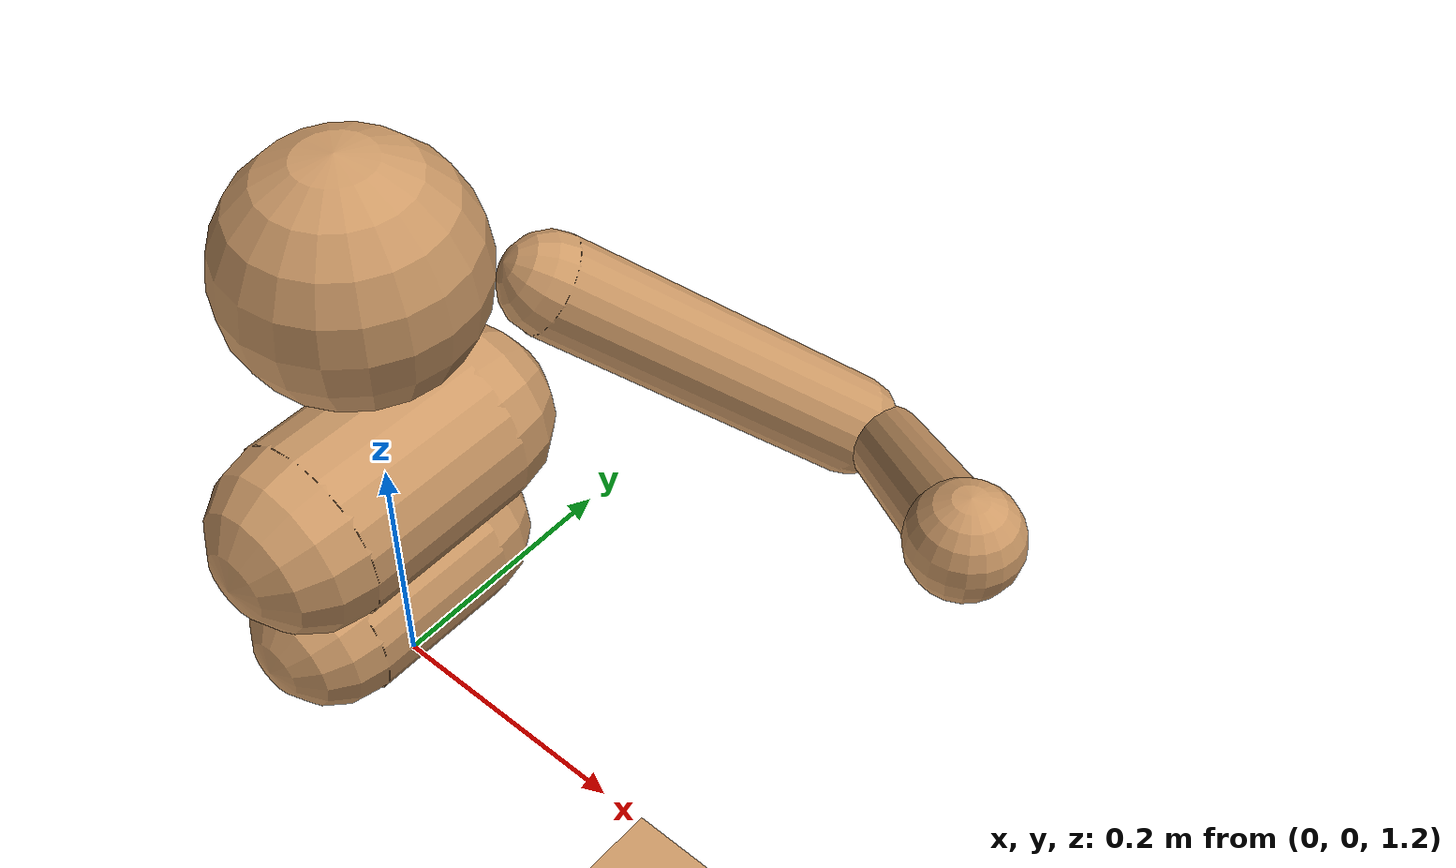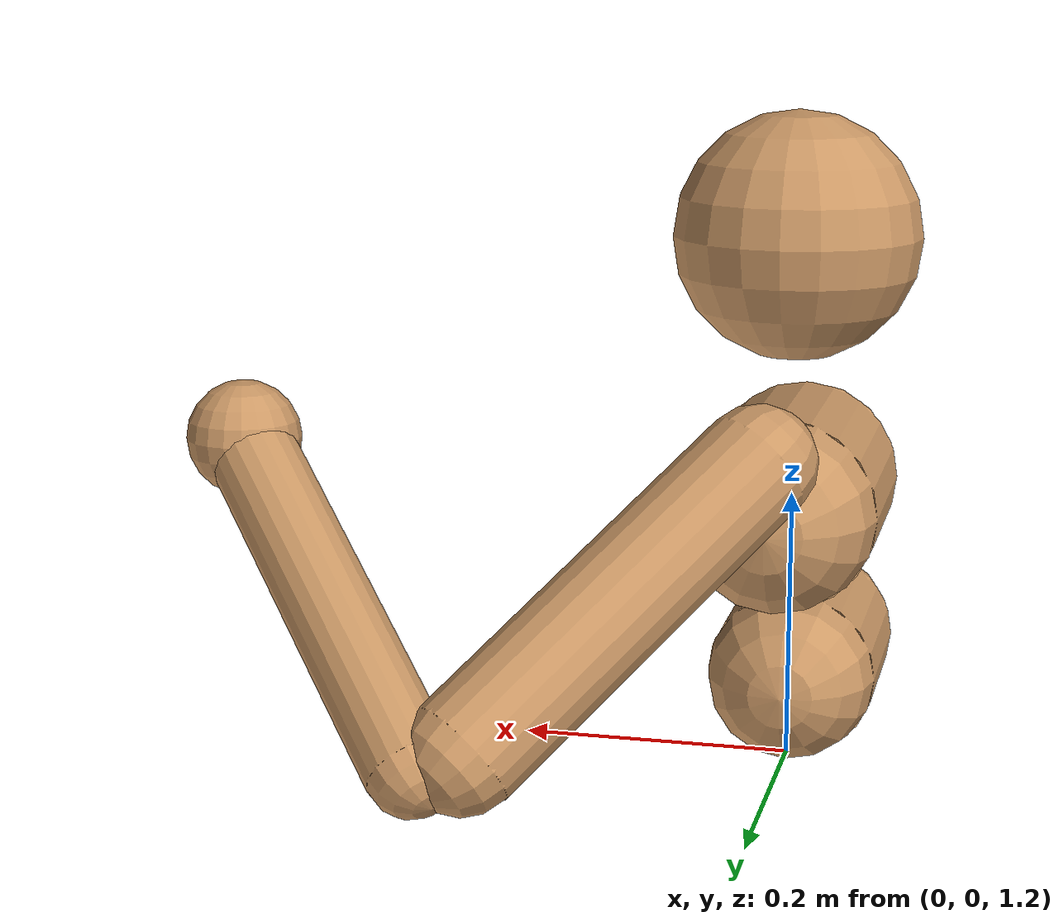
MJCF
<mujoco model='humanoid'>
    <compiler inertiafromgeom='true' angle='degree'/>

    <default>
        <joint limited='true' damping='1' armature='0' />
        <geom contype='1' conaffinity='1' condim='1' rgba='0.8 0.6 .4 1'
        	margin="0.001" solref=".02 1" solimp=".8 .8 .01" material="geom"/>
        <motor ctrlrange='-.4 .4' ctrllimited='true'/>
    </default>

    <option timestep='0.002' iterations="50" solver="PGS">
        <flag energy="enable"/>
    </option>

    <visual>
        <map fogstart="3" fogend="5" force="0.1"/>
        <quality shadowsize="2048"/>
    </visual>

    <asset>
        <texture type="skybox" builtin="gradient" width="100" height="100" rgb1=".4 .6 .8"
            rgb2="0 0 0"/>
        <texture name="texgeom" type="cube" builtin="flat" mark="cross" width="127" height="1278"
            rgb1="0.8 0.6 0.4" rgb2="0.8 0.6 0.4" markrgb="1 1 1" random="0.01"/>
        <texture name="texplane" type="2d" builtin="checker" rgb1=".2 .3 .4" rgb2=".1 0.15 0.2"
            width="100" height="100"/>

        <material name='MatPlane' reflectance='0.5' texture="texplane" texrepeat="1 1" texuniform="true"/>
        <material name='geom' texture="texgeom" texuniform="true"/>
    </asset>

    <worldbody>
        <geom name='floor' pos='0 0 0' size='10 10 0.125' type='plane' material="MatPlane" condim='3'/>

        <body name='torso' pos='0 0 1.4'>
            <geom name='torso1' type='capsule' fromto='0 -.07 0 0 .07 0'  size='0.07' />
            <geom name='head' type='sphere' pos='0 0 .19' size='.09'/>
            <geom name='uwaist' type='capsule' fromto='-.01 -.06 -.12 -.01 .06 -.12' size='0.06'/>
            <body name='left_upper_arm' pos='0 0.17 0.06' >
                <joint name='left_shoulder1' type='hinge' pos='0 0 0' axis='2 -1 1' range='-60 85' stiffness='1' armature='0.0068' />
                <joint name='left_shoulder2' type='hinge' pos='0 0 0' axis='0 1 1' range='-60 85'  stiffness='1' armature='0.0051' />
                <geom name='left_uarm1' type='capsule' fromto='0 0 0 .16 .16 -.16'  size='0.04 0.16' />
                <body name='left_lower_arm' pos='.18 .18 -.18' >
                    <joint name='left_elbow' type='hinge' pos='0 0 0' axis='0 -1 -1' range='-90 50' stiffness='0' armature='0.0028' />
                    <geom name='left_larm' type='capsule' fromto='0.01 -0.01 0.01 .17 -.17 .17'  size='0.031' />
                    <geom name='left_hand' type='sphere' pos='.18 -.18 .18'  size='0.04'/>
                </body>
            </body>
        </body>
    </worldbody>

</mujoco>
